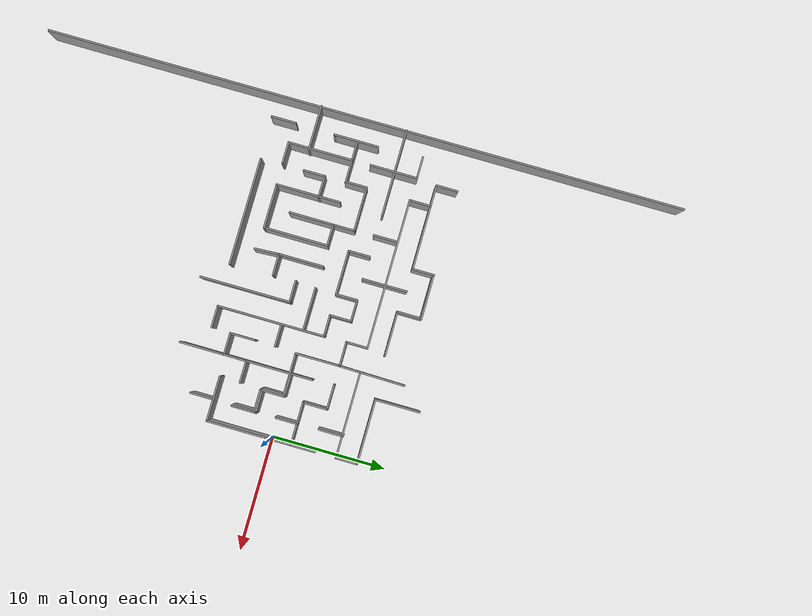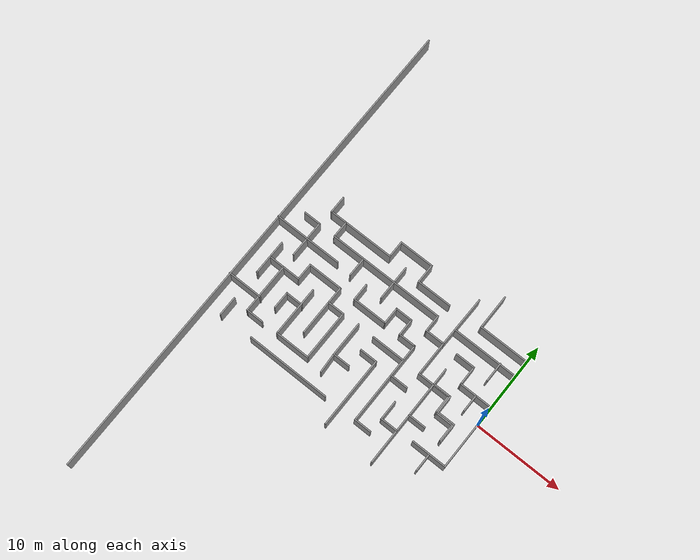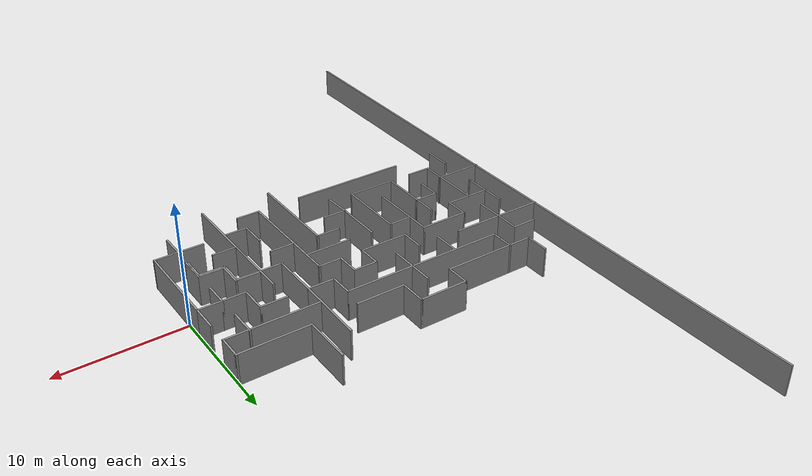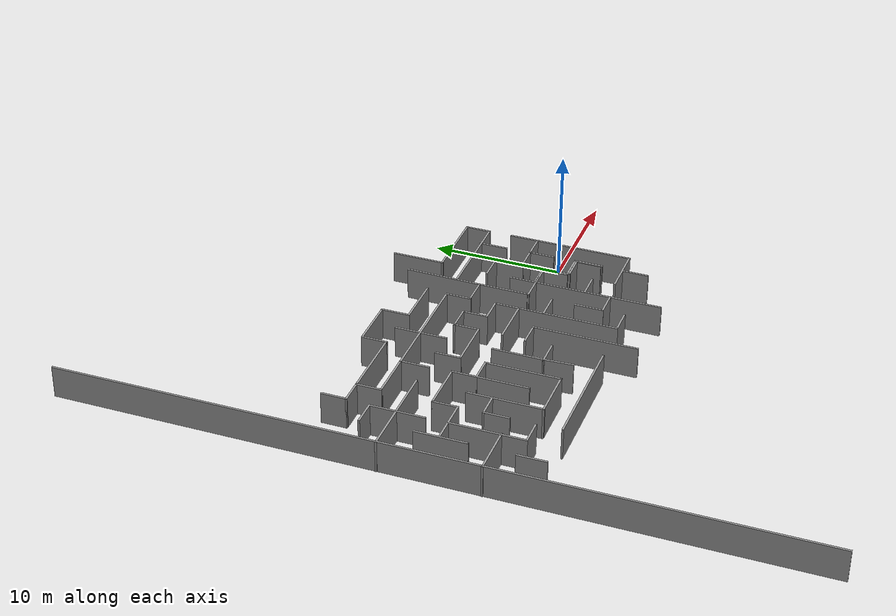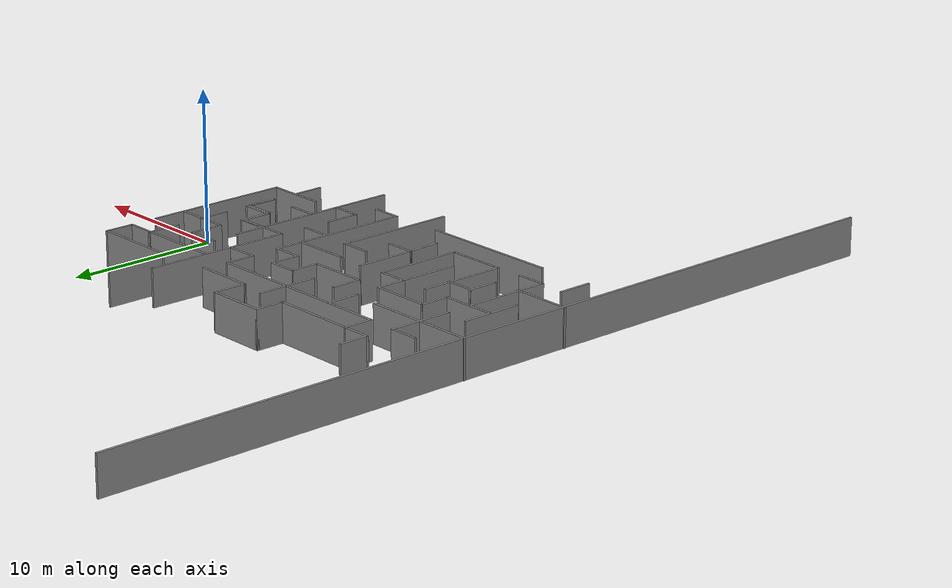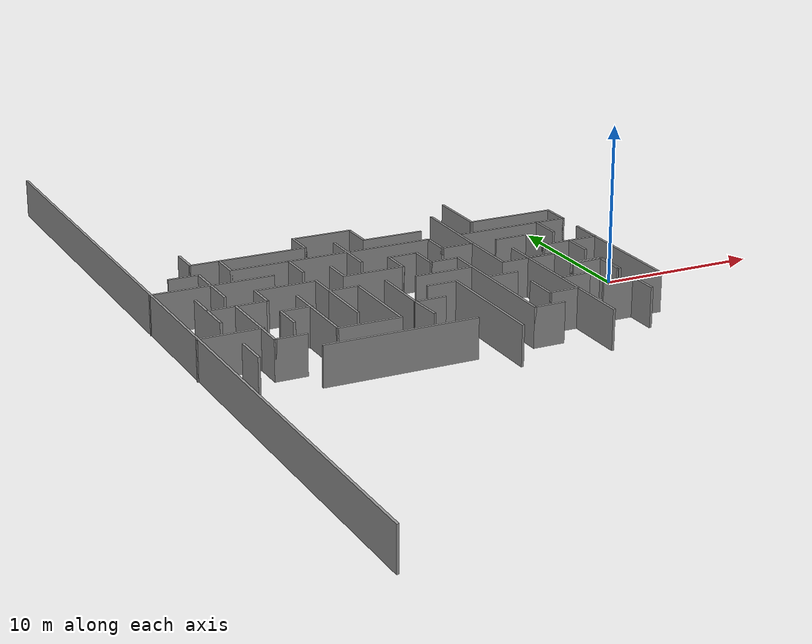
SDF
<sdf version="1.7">
 <model name="maze4">
  <pose>-0.019787 0.082438 0 0 -0 0</pose>
  <link name="Wall_100">
   <collision name="Wall_100_Collision">
    <geometry><box><size>5.75 0.15 2.5</size></box></geometry>
    <pose>0 0 1.25 0 -0 0</pose>
   </collision>
   <visual name="Wall_100_Visual">
    <pose>0 0 1.25 0 -0 0</pose>
    <geometry><box><size>5.75 0.15 2.5</size></box></geometry>
    <material>
     <script><uri>file://media/materials/scripts/gazebo.material</uri><name>Gazebo/Grey</name></script>
     <ambient>1 1 1 1</ambient>
    </material>
    <meta><layer>0</layer></meta>
   </visual>
   <pose>-20.839 -2.82935 0 0 -0 1.5708</pose>
  </link>
  <link name="Wall_102">
   <collision name="Wall_102_Collision">
    <geometry><box><size>4 0.15 2.5</size></box></geometry>
    <pose>0 0 1.25 0 -0 0</pose>
   </collision>
   <visual name="Wall_102_Visual">
    <pose>0 0 1.25 0 -0 0</pose>
    <geometry><box><size>4 0.15 2.5</size></box></geometry>
    <material>
     <script><uri>file://media/materials/scripts/gazebo.material</uri><name>Gazebo/Grey</name></script>
     <ambient>1 1 1 1</ambient>
    </material>
    <meta><layer>0</layer></meta>
   </visual>
   <pose>-18.839 -1.95435 0 0 -0 -1.5708</pose>
  </link>
  <link name="Wall_104">
   <collision name="Wall_104_Collision">
    <geometry><box><size>2 0.15 2.5</size></box></geometry>
    <pose>0 0 1.25 0 -0 0</pose>
   </collision>
   <visual name="Wall_104_Visual">
    <pose>0 0 1.25 0 -0 0</pose>
    <geometry><box><size>2 0.15 2.5</size></box></geometry>
    <material>
     <script><uri>file://media/materials/scripts/gazebo.material</uri><name>Gazebo/Grey</name></script>
     <ambient>1 1 1 1</ambient>
    </material>
    <meta><layer>0</layer></meta>
   </visual>
   <pose>-21.7242 -1.89031 0 0 -0 3.14159</pose>
  </link>
  <link name="Wall_105">
   <collision name="Wall_105_Collision">
    <geometry><box><size>2 0.15 2.5</size></box></geometry>
    <pose>0 0 1.25 0 -0 0</pose>
   </collision>
   <visual name="Wall_105_Visual">
    <pose>0 0 1.25 0 -0 0</pose>
    <geometry><box><size>2 0.15 2.5</size></box></geometry>
    <material>
     <script><uri>file://media/materials/scripts/gazebo.material</uri><name>Gazebo/Grey</name></script>
     <ambient>1 1 1 1</ambient>
    </material>
    <meta><layer>0</layer></meta>
   </visual>
   <pose>-22.6492 -2.81531 0 0 -0 -1.5708</pose>
  </link>
  <link name="Wall_107">
   <collision name="Wall_107_Collision">
    <geometry><box><size>5.75 0.15 2.5</size></box></geometry>
    <pose>0 0 1.25 0 -0 0</pose>
   </collision>
   <visual name="Wall_107_Visual">
    <pose>0 0 1.25 0 -0 0</pose>
    <geometry><box><size>5.75 0.15 2.5</size></box></geometry>
    <material>
     <script><uri>file://media/materials/scripts/gazebo.material</uri><name>Gazebo/Grey</name></script>
     <ambient>1 1 1 1</ambient>
    </material>
    <meta><layer>0</layer></meta>
   </visual>
   <pose>-24.6141 -2.87587 0 0 -0 -1.5708</pose>
  </link>
  <link name="Wall_108">
   <collision name="Wall_108_Collision">
    <geometry><box><size>2 0.15 2.5</size></box></geometry>
    <pose>0 0 1.25 0 -0 0</pose>
   </collision>
   <visual name="Wall_108_Visual">
    <pose>0 0 1.25 0 -0 0</pose>
    <geometry><box><size>2 0.15 2.5</size></box></geometry>
    <material>
     <script><uri>file://media/materials/scripts/gazebo.material</uri><name>Gazebo/Grey</name></script>
     <ambient>1 1 1 1</ambient>
    </material>
    <meta><layer>0</layer></meta>
   </visual>
   <pose>-23.6891 -5.67587 0 0 -0 0</pose>
  </link>
  <link name="Wall_111">
   <collision name="Wall_111_Collision">
    <geometry><box><size>4 0.15 2.5</size></box></geometry>
    <pose>0 0 1.25 0 -0 0</pose>
   </collision>
   <visual name="Wall_111_Visual">
    <pose>0 0 1.25 0 -0 0</pose>
    <geometry><box><size>4 0.15 2.5</size></box></geometry>
    <material>
     <script><uri>file://media/materials/scripts/gazebo.material</uri><name>Gazebo/Grey</name></script>
     <ambient>1 1 1 1</ambient>
    </material>
    <meta><layer>0</layer></meta>
   </visual>
   <pose>-26.4576 -3.84431 0 0 -0 0</pose>
  </link>
  <link name="Wall_113">
   <collision name="Wall_113_Collision">
    <geometry><box><size>2.25 0.15 2.5</size></box></geometry>
    <pose>0 0 1.25 0 -0 0</pose>
   </collision>
   <visual name="Wall_113_Visual">
    <pose>0 0 1.25 0 -0 0</pose>
    <geometry><box><size>2.25 0.15 2.5</size></box></geometry>
    <material>
     <script><uri>file://media/materials/scripts/gazebo.material</uri><name>Gazebo/Grey</name></script>
     <ambient>1 1 1 1</ambient>
    </material>
    <meta><layer>0</layer></meta>
   </visual>
   <pose>-26.382 -6.61569 0 0 -0 -1.5708</pose>
  </link>
  <link name="Wall_201">
   <collision name="Wall_201_Collision">
    <geometry><box><size>8 0.15 2.5</size></box></geometry>
    <pose>0 0 1.25 0 -0 0</pose>
   </collision>
   <visual name="Wall_201_Visual">
    <pose>0 0 1.25 0 -0 0</pose>
    <geometry><box><size>8 0.15 2.5</size></box></geometry>
    <material>
     <script><uri>file://media/materials/scripts/gazebo.material</uri><name>Gazebo/Grey</name></script>
     <ambient>1 1 1 1</ambient>
    </material>
    <meta><layer>0</layer></meta>
   </visual>
   <pose>-11.4856 -5.69111 0 0 -0 1.5708</pose>
  </link>
  <link name="Wall_202">
   <collision name="Wall_202_Collision">
    <geometry><box><size>2 0.15 2.5</size></box></geometry>
    <pose>0 0 1.25 0 -0 0</pose>
   </collision>
   <visual name="Wall_202_Visual">
    <pose>0 0 1.25 0 -0 0</pose>
    <geometry><box><size>2 0.15 2.5</size></box></geometry>
    <material>
     <script><uri>file://media/materials/scripts/gazebo.material</uri><name>Gazebo/Grey</name></script>
     <ambient>1 1 1 1</ambient>
    </material>
    <meta><layer>0</layer></meta>
   </visual>
   <pose>-12.4106 -1.76612 0 0 -0 3.14159</pose>
  </link>
  <link name="Wall_204">
   <collision name="Wall_204_Collision">
    <geometry><box><size>4 0.15 2.5</size></box></geometry>
    <pose>0 0 1.25 0 -0 0</pose>
   </collision>
   <visual name="Wall_204_Visual">
    <pose>0 0 1.25 0 -0 0</pose>
    <geometry><box><size>4 0.15 2.5</size></box></geometry>
    <material>
     <script><uri>file://media/materials/scripts/gazebo.material</uri><name>Gazebo/Grey</name></script>
     <ambient>1 1 1 1</ambient>
    </material>
    <meta><layer>0</layer></meta>
   </visual>
   <pose>-15.1629 -1.84397 0 0 -0 -1.5708</pose>
  </link>
  <link name="Wall_205">
   <collision name="Wall_205_Collision">
    <geometry><box><size>2 0.15 2.5</size></box></geometry>
    <pose>0 0 1.25 0 -0 0</pose>
   </collision>
   <visual name="Wall_205_Visual">
    <pose>0 0 1.25 0 -0 0</pose>
    <geometry><box><size>2 0.15 2.5</size></box></geometry>
    <material>
     <script><uri>file://media/materials/scripts/gazebo.material</uri><name>Gazebo/Grey</name></script>
     <ambient>1 1 1 1</ambient>
    </material>
    <meta><layer>0</layer></meta>
   </visual>
   <pose>-14.2379 -3.76897 0 0 -0 0</pose>
  </link>
  <link name="Wall_208">
   <collision name="Wall_208_Collision">
    <geometry><box><size>2.28423 0.15 2.5</size></box></geometry>
    <pose>0 0 1.25 0 -0 0</pose>
   </collision>
   <visual name="Wall_208_Visual">
    <pose>0 0 1.25 0 -0 0</pose>
    <geometry><box><size>2.28423 0.15 2.5</size></box></geometry>
    <material>
     <script><uri>file://media/materials/scripts/gazebo.material</uri><name>Gazebo/Grey</name></script>
     <ambient>1 1 1 1</ambient>
    </material>
    <meta><layer>0</layer></meta>
   </visual>
   <pose>-15.1019 -4.83434 0 0 -0 1.62802</pose>
  </link>
  <link name="Wall_210">
   <collision name="Wall_210_Collision">
    <geometry><box><size>9.5 0.15 2.5</size></box></geometry>
    <pose>0 0 1.25 0 -0 0</pose>
   </collision>
   <visual name="Wall_210_Visual">
    <pose>0 0 1.25 0 -0 0</pose>
    <geometry><box><size>9.5 0.15 2.5</size></box></geometry>
    <material>
     <script><uri>file://media/materials/scripts/gazebo.material</uri><name>Gazebo/Grey</name></script>
     <ambient>1 1 1 1</ambient>
    </material>
    <meta><layer>0</layer></meta>
   </visual>
   <pose>-17.8927 -7.56781 0 0 -0 0</pose>
  </link>
  <link name="Wall_212">
   <collision name="Wall_212_Collision">
    <geometry><box><size>2 0.15 2.5</size></box></geometry>
    <pose>0 0 1.25 0 -0 0</pose>
   </collision>
   <visual name="Wall_212_Visual">
    <pose>0 0 1.25 0 -0 0</pose>
    <geometry><box><size>2 0.15 2.5</size></box></geometry>
    <material>
     <script><uri>file://media/materials/scripts/gazebo.material</uri><name>Gazebo/Grey</name></script>
     <ambient>1 1 1 1</ambient>
    </material>
    <meta><layer>0</layer></meta>
   </visual>
   <pose>-22.6528 6.57753 0 0 -0 -1.5708</pose>
  </link>
  <link name="Wall_213">
   <collision name="Wall_213_Collision">
    <geometry><box><size>13.25 0.15 2.5</size></box></geometry>
    <pose>0 0 1.25 0 -0 0</pose>
   </collision>
   <visual name="Wall_213_Visual">
    <pose>0 0 1.25 0 -0 0</pose>
    <geometry><box><size>13.25 0.15 2.5</size></box></geometry>
    <material>
     <script><uri>file://media/materials/scripts/gazebo.material</uri><name>Gazebo/Grey</name></script>
     <ambient>1 1 1 1</ambient>
    </material>
    <meta><layer>0</layer></meta>
   </visual>
   <pose>-16.1028 5.65253 0 0 -0 0</pose>
  </link>
  <link name="Wall_214">
   <collision name="Wall_214_Collision">
    <geometry><box><size>2 0.15 2.5</size></box></geometry>
    <pose>0 0 1.25 0 -0 0</pose>
   </collision>
   <visual name="Wall_214_Visual">
    <pose>0 0 1.25 0 -0 0</pose>
    <geometry><box><size>2 0.15 2.5</size></box></geometry>
    <material>
     <script><uri>file://media/materials/scripts/gazebo.material</uri><name>Gazebo/Grey</name></script>
     <ambient>1 1 1 1</ambient>
    </material>
    <meta><layer>0</layer></meta>
   </visual>
   <pose>-9.5528 4.72753 0 0 -0 -1.5708</pose>
  </link>
  <link name="Wall_215">
   <collision name="Wall_215_Collision">
    <geometry><box><size>2.25 0.15 2.5</size></box></geometry>
    <pose>0 0 1.25 0 -0 0</pose>
   </collision>
   <visual name="Wall_215_Visual">
    <pose>0 0 1.25 0 -0 0</pose>
    <geometry><box><size>2.25 0.15 2.5</size></box></geometry>
    <material>
     <script><uri>file://media/materials/scripts/gazebo.material</uri><name>Gazebo/Grey</name></script>
     <ambient>1 1 1 1</ambient>
    </material>
    <meta><layer>0</layer></meta>
   </visual>
   <pose>-8.5028 3.80253 0 0 -0 0</pose>
  </link>
  <link name="Wall_216">
   <collision name="Wall_216_Collision">
    <geometry><box><size>4 0.15 2.5</size></box></geometry>
    <pose>0 0 1.25 0 -0 0</pose>
   </collision>
   <visual name="Wall_216_Visual">
    <pose>0 0 1.25 0 -0 0</pose>
    <geometry><box><size>4 0.15 2.5</size></box></geometry>
    <material>
     <script><uri>file://media/materials/scripts/gazebo.material</uri><name>Gazebo/Grey</name></script>
     <ambient>1 1 1 1</ambient>
    </material>
    <meta><layer>0</layer></meta>
   </visual>
   <pose>-7.4528 1.87753 0 0 -0 -1.5708</pose>
  </link>
  <link name="Wall_217">
   <collision name="Wall_217_Collision">
    <geometry><box><size>3.75 0.15 2.5</size></box></geometry>
    <pose>0 0 1.25 0 -0 0</pose>
   </collision>
   <visual name="Wall_217_Visual">
    <pose>0 0 1.25 0 -0 0</pose>
    <geometry><box><size>3.75 0.15 2.5</size></box></geometry>
    <material>
     <script><uri>file://media/materials/scripts/gazebo.material</uri><name>Gazebo/Grey</name></script>
     <ambient>1 1 1 1</ambient>
    </material>
    <meta><layer>0</layer></meta>
   </visual>
   <pose>-5.6528 -0.04747 0 0 -0 0</pose>
  </link>
  <link name="Wall_218">
   <collision name="Wall_218_Collision">
    <geometry><box><size>2 0.15 2.5</size></box></geometry>
    <pose>0 0 1.25 0 -0 0</pose>
   </collision>
   <visual name="Wall_218_Visual">
    <pose>0 0 1.25 0 -0 0</pose>
    <geometry><box><size>2 0.15 2.5</size></box></geometry>
    <material>
     <script><uri>file://media/materials/scripts/gazebo.material</uri><name>Gazebo/Grey</name></script>
     <ambient>1 1 1 1</ambient>
    </material>
    <meta><layer>0</layer></meta>
   </visual>
   <pose>-3.8528 -0.97247 0 0 -0 -1.5708</pose>
  </link>
  <link name="Wall_219">
   <collision name="Wall_219_Collision">
    <geometry><box><size>2.25 0.15 2.5</size></box></geometry>
    <pose>0 0 1.25 0 -0 0</pose>
   </collision>
   <visual name="Wall_219_Visual">
    <pose>0 0 1.25 0 -0 0</pose>
    <geometry><box><size>2.25 0.15 2.5</size></box></geometry>
    <material>
     <script><uri>file://media/materials/scripts/gazebo.material</uri><name>Gazebo/Grey</name></script>
     <ambient>1 1 1 1</ambient>
    </material>
    <meta><layer>0</layer></meta>
   </visual>
   <pose>-2.8028 -1.89747 0 0 -0 0</pose>
  </link>
  <link name="Wall_220">
   <collision name="Wall_220_Collision">
    <geometry><box><size>2.25 0.15 2.5</size></box></geometry>
    <pose>0 0 1.25 0 -0 0</pose>
   </collision>
   <visual name="Wall_220_Visual">
    <pose>0 0 1.25 0 -0 0</pose>
    <geometry><box><size>2.25 0.15 2.5</size></box></geometry>
    <material>
     <script><uri>file://media/materials/scripts/gazebo.material</uri><name>Gazebo/Grey</name></script>
     <ambient>1 1 1 1</ambient>
    </material>
    <meta><layer>0</layer></meta>
   </visual>
   <pose>-1.7528 -2.94747 0 0 -0 -1.5708</pose>
  </link>
  <link name="Wall_222">
   <collision name="Wall_222_Collision">
    <geometry><box><size>2.25 0.15 2.5</size></box></geometry>
    <pose>0 0 1.25 0 -0 0</pose>
   </collision>
   <visual name="Wall_222_Visual">
    <pose>0 0 1.25 0 -0 0</pose>
    <geometry><box><size>2.25 0.15 2.5</size></box></geometry>
    <material>
     <script><uri>file://media/materials/scripts/gazebo.material</uri><name>Gazebo/Grey</name></script>
     <ambient>1 1 1 1</ambient>
    </material>
    <meta><layer>0</layer></meta>
   </visual>
   <pose>-18.9274 4.58745 0 0 -0 -1.5708</pose>
  </link>
  <link name="Wall_224">
   <collision name="Wall_224_Collision">
    <geometry><box><size>4 0.15 2.5</size></box></geometry>
    <pose>0 0 1.25 0 -0 0</pose>
   </collision>
   <visual name="Wall_224_Visual">
    <pose>0 0 1.25 0 -0 0</pose>
    <geometry><box><size>4 0.15 2.5</size></box></geometry>
    <material>
     <script><uri>file://media/materials/scripts/gazebo.material</uri><name>Gazebo/Grey</name></script>
     <ambient>1 1 1 1</ambient>
    </material>
    <meta><layer>0</layer></meta>
   </visual>
   <pose>-15.0711 5.58752 0 0 -0 -1.5708</pose>
  </link>
  <link name="Wall_226">
   <collision name="Wall_226_Collision">
    <geometry><box><size>5.75 0.15 2.5</size></box></geometry>
    <pose>0 0 1.25 0 -0 0</pose>
   </collision>
   <visual name="Wall_226_Visual">
    <pose>0 0 1.25 0 -0 0</pose>
    <geometry><box><size>5.75 0.15 2.5</size></box></geometry>
    <material>
     <script><uri>file://media/materials/scripts/gazebo.material</uri><name>Gazebo/Grey</name></script>
     <ambient>1 1 1 1</ambient>
    </material>
    <meta><layer>0</layer></meta>
   </visual>
   <pose>-19.8528 7.50253 0 0 -0 0</pose>
  </link>
  <link name="Wall_227">
   <collision name="Wall_227_Collision">
    <geometry><box><size>2 0.15 2.5</size></box></geometry>
    <pose>0 0 1.25 0 -0 0</pose>
   </collision>
   <visual name="Wall_227_Visual">
    <pose>0 0 1.25 0 -0 0</pose>
    <geometry><box><size>2 0.15 2.5</size></box></geometry>
    <material>
     <script><uri>file://media/materials/scripts/gazebo.material</uri><name>Gazebo/Grey</name></script>
     <ambient>1 1 1 1</ambient>
    </material>
    <meta><layer>0</layer></meta>
   </visual>
   <pose>-17.0528 8.42753 0 0 -0 1.5708</pose>
  </link>
  <link name="Wall_228">
   <collision name="Wall_228_Collision">
    <geometry><box><size>4 0.15 2.5</size></box></geometry>
    <pose>0 0 1.25 0 -0 0</pose>
   </collision>
   <visual name="Wall_228_Visual">
    <pose>0 0 1.25 0 -0 0</pose>
    <geometry><box><size>4 0.15 2.5</size></box></geometry>
    <material>
     <script><uri>file://media/materials/scripts/gazebo.material</uri><name>Gazebo/Grey</name></script>
     <ambient>1 1 1 1</ambient>
    </material>
    <meta><layer>0</layer></meta>
   </visual>
   <pose>-15.1278 9.35253 0 0 -0 0</pose>
  </link>
  <link name="Wall_232">
   <collision name="Wall_232_Collision">
    <geometry><box><size>2.25 0.15 2.5</size></box></geometry>
    <pose>0 0 1.25 0 -0 0</pose>
   </collision>
   <visual name="Wall_232_Visual">
    <pose>0 0 1.25 0 -0 0</pose>
    <geometry><box><size>2.25 0.15 2.5</size></box></geometry>
    <material>
     <script><uri>file://media/materials/scripts/gazebo.material</uri><name>Gazebo/Grey</name></script>
     <ambient>1 1 1 1</ambient>
    </material>
    <meta><layer>0</layer></meta>
   </visual>
   <pose>-13.2028 8.30253 0 0 -0 -1.5708</pose>
  </link>
  <link name="Wall_233">
   <collision name="Wall_233_Collision">
    <geometry><box><size>4 0.15 2.5</size></box></geometry>
    <pose>0 0 1.25 0 -0 0</pose>
   </collision>
   <visual name="Wall_233_Visual">
    <pose>0 0 1.25 0 -0 0</pose>
    <geometry><box><size>4 0.15 2.5</size></box></geometry>
    <material>
     <script><uri>file://media/materials/scripts/gazebo.material</uri><name>Gazebo/Grey</name></script>
     <ambient>1 1 1 1</ambient>
    </material>
    <meta><layer>0</layer></meta>
   </visual>
   <pose>-11.2778 7.25253 0 0 -0 0</pose>
  </link>
  <link name="Wall_236">
   <collision name="Wall_236_Collision">
    <geometry><box><size>5.8419 0.15 2.5</size></box></geometry>
    <pose>0 0 1.25 0 -0 0</pose>
   </collision>
   <visual name="Wall_236_Visual">
    <pose>0 0 1.25 0 -0 0</pose>
    <geometry><box><size>5.8419 0.15 2.5</size></box></geometry>
    <material>
     <script><uri>file://media/materials/scripts/gazebo.material</uri><name>Gazebo/Grey</name></script>
     <ambient>1 1 1 1</ambient>
    </material>
    <meta><layer>0</layer></meta>
   </visual>
   <pose>-7.40767 6.64812 0 0 -0 -1.58666</pose>
  </link>
  <link name="Wall_238">
   <collision name="Wall_238_Collision">
    <geometry><box><size>7.5 0.15 2.5</size></box></geometry>
    <pose>0 0 1.25 0 -0 0</pose>
   </collision>
   <visual name="Wall_238_Visual">
    <pose>0 0 1.25 0 -0 0</pose>
    <geometry><box><size>7.5 0.15 2.5</size></box></geometry>
    <material>
     <script><uri>file://media/materials/scripts/gazebo.material</uri><name>Gazebo/Grey</name></script>
     <ambient>1 1 1 1</ambient>
    </material>
    <meta><layer>0</layer></meta>
   </visual>
   <pose>-3.64825 5.63745 0 0 -0 0</pose>
  </link>
  <link name="Wall_239">
   <collision name="Wall_239_Collision">
    <geometry><box><size>2 0.15 2.5</size></box></geometry>
    <pose>0 0 1.25 0 -0 0</pose>
   </collision>
   <visual name="Wall_239_Visual">
    <pose>0 0 1.25 0 -0 0</pose>
    <geometry><box><size>2 0.15 2.5</size></box></geometry>
    <material>
     <script><uri>file://media/materials/scripts/gazebo.material</uri><name>Gazebo/Grey</name></script>
     <ambient>1 1 1 1</ambient>
    </material>
    <meta><layer>0</layer></meta>
   </visual>
   <pose>0.026754 6.56245 0 0 -0 1.5708</pose>
  </link>
  <link name="Wall_240">
   <collision name="Wall_240_Collision">
    <geometry><box><size>5.75 0.15 2.5</size></box></geometry>
    <pose>0 0 1.25 0 -0 0</pose>
   </collision>
   <visual name="Wall_240_Visual">
    <pose>0 0 1.25 0 -0 0</pose>
    <geometry><box><size>5.75 0.15 2.5</size></box></geometry>
    <material>
     <script><uri>file://media/materials/scripts/gazebo.material</uri><name>Gazebo/Grey</name></script>
     <ambient>1 1 1 1</ambient>
    </material>
    <meta><layer>0</layer></meta>
   </visual>
   <pose>-2.77325 7.48745 0 0 -0 3.14159</pose>
  </link>
  <link name="Wall_241">
   <collision name="Wall_241_Collision">
    <geometry><box><size>4 0.15 2.5</size></box></geometry>
    <pose>0 0 1.25 0 -0 0</pose>
   </collision>
   <visual name="Wall_241_Visual">
    <pose>0 0 1.25 0 -0 0</pose>
    <geometry><box><size>4 0.15 2.5</size></box></geometry>
    <material>
     <script><uri>file://media/materials/scripts/gazebo.material</uri><name>Gazebo/Grey</name></script>
     <ambient>1 1 1 1</ambient>
    </material>
    <meta><layer>0</layer></meta>
   </visual>
   <pose>-5.57325 9.41245 0 0 -0 1.5708</pose>
  </link>
  <link name="Wall_247">
   <collision name="Wall_247_Collision">
    <geometry><box><size>2 0.15 2.5</size></box></geometry>
    <pose>0 0 1.25 0 -0 0</pose>
   </collision>
   <visual name="Wall_247_Visual">
    <pose>0 0 1.25 0 -0 0</pose>
    <geometry><box><size>2 0.15 2.5</size></box></geometry>
    <material>
     <script><uri>file://media/materials/scripts/gazebo.material</uri><name>Gazebo/Grey</name></script>
     <ambient>1 1 1 1</ambient>
    </material>
    <meta><layer>0</layer></meta>
   </visual>
   <pose>-17.0523 2.76663 0 0 -0 -1.5708</pose>
  </link>
  <link name="Wall_248">
   <collision name="Wall_248_Collision">
    <geometry><box><size>4 0.15 2.5</size></box></geometry>
    <pose>0 0 1.25 0 -0 0</pose>
   </collision>
   <visual name="Wall_248_Visual">
    <pose>0 0 1.25 0 -0 0</pose>
    <geometry><box><size>4 0.15 2.5</size></box></geometry>
    <material>
     <script><uri>file://media/materials/scripts/gazebo.material</uri><name>Gazebo/Grey</name></script>
     <ambient>1 1 1 1</ambient>
    </material>
    <meta><layer>0</layer></meta>
   </visual>
   <pose>-15.1273 1.84163 0 0 -0 0</pose>
  </link>
  <link name="Wall_249">
   <collision name="Wall_249_Collision">
    <geometry><box><size>2 0.15 2.5</size></box></geometry>
    <pose>0 0 1.25 0 -0 0</pose>
   </collision>
   <visual name="Wall_249_Visual">
    <pose>0 0 1.25 0 -0 0</pose>
    <geometry><box><size>2 0.15 2.5</size></box></geometry>
    <material>
     <script><uri>file://media/materials/scripts/gazebo.material</uri><name>Gazebo/Grey</name></script>
     <ambient>1 1 1 1</ambient>
    </material>
    <meta><layer>0</layer></meta>
   </visual>
   <pose>-13.2023 2.76663 0 0 -0 1.5708</pose>
  </link>
  <link name="Wall_250">
   <collision name="Wall_250_Collision">
    <geometry><box><size>2 0.15 2.5</size></box></geometry>
    <pose>0 0 1.25 0 -0 0</pose>
   </collision>
   <visual name="Wall_250_Visual">
    <pose>0 0 1.25 0 -0 0</pose>
    <geometry><box><size>2 0.15 2.5</size></box></geometry>
    <material>
     <script><uri>file://media/materials/scripts/gazebo.material</uri><name>Gazebo/Grey</name></script>
     <ambient>1 1 1 1</ambient>
    </material>
    <meta><layer>0</layer></meta>
   </visual>
   <pose>-12.2773 3.69164 0 0 -0 0</pose>
  </link>
  <link name="Wall_251">
   <collision name="Wall_251_Collision">
    <geometry><box><size>2 0.15 2.5</size></box></geometry>
    <pose>0 0 1.25 0 -0 0</pose>
   </collision>
   <visual name="Wall_251_Visual">
    <pose>0 0 1.25 0 -0 0</pose>
    <geometry><box><size>2 0.15 2.5</size></box></geometry>
    <material>
     <script><uri>file://media/materials/scripts/gazebo.material</uri><name>Gazebo/Grey</name></script>
     <ambient>1 1 1 1</ambient>
    </material>
    <meta><layer>0</layer></meta>
   </visual>
   <pose>-11.3523 2.76663 0 0 -0 -1.5708</pose>
  </link>
  <link name="Wall_252">
   <collision name="Wall_252_Collision">
    <geometry><box><size>2 0.15 2.5</size></box></geometry>
    <pose>0 0 1.25 0 -0 0</pose>
   </collision>
   <visual name="Wall_252_Visual">
    <pose>0 0 1.25 0 -0 0</pose>
    <geometry><box><size>2 0.15 2.5</size></box></geometry>
    <material>
     <script><uri>file://media/materials/scripts/gazebo.material</uri><name>Gazebo/Grey</name></script>
     <ambient>1 1 1 1</ambient>
    </material>
    <meta><layer>0</layer></meta>
   </visual>
   <pose>-10.4273 1.84163 0 0 -0 0</pose>
  </link>
  <link name="Wall_253">
   <collision name="Wall_253_Collision">
    <geometry><box><size>9.5 0.15 2.5</size></box></geometry>
    <pose>0 0 1.25 0 -0 0</pose>
   </collision>
   <visual name="Wall_253_Visual">
    <pose>0 0 1.25 0 -0 0</pose>
    <geometry><box><size>9.5 0.15 2.5</size></box></geometry>
    <material>
     <script><uri>file://media/materials/scripts/gazebo.material</uri><name>Gazebo/Grey</name></script>
     <ambient>1 1 1 1</ambient>
    </material>
    <meta><layer>0</layer></meta>
   </visual>
   <pose>-9.50234 -2.83337 0 0 -0 -1.5708</pose>
  </link>
  <link name="Wall_254">
   <collision name="Wall_254_Collision">
    <geometry><box><size>2 0.15 2.5</size></box></geometry>
    <pose>0 0 1.25 0 -0 0</pose>
   </collision>
   <visual name="Wall_254_Visual">
    <pose>0 0 1.25 0 -0 0</pose>
    <geometry><box><size>2 0.15 2.5</size></box></geometry>
    <material>
     <script><uri>file://media/materials/scripts/gazebo.material</uri><name>Gazebo/Grey</name></script>
     <ambient>1 1 1 1</ambient>
    </material>
    <meta><layer>0</layer></meta>
   </visual>
   <pose>-8.57734 -7.50837 0 0 -0 0</pose>
  </link>
  <link name="Wall_260">
   <collision name="Wall_260_Collision">
    <geometry><box><size>3.75 0.15 2.5</size></box></geometry>
    <pose>0 0 1.25 0 -0 0</pose>
   </collision>
   <visual name="Wall_260_Visual">
    <pose>0 0 1.25 0 -0 0</pose>
    <geometry><box><size>3.75 0.15 2.5</size></box></geometry>
    <material>
     <script><uri>file://media/materials/scripts/gazebo.material</uri><name>Gazebo/Grey</name></script>
     <ambient>1 1 1 1</ambient>
    </material>
    <meta><layer>0</layer></meta>
   </visual>
   <pose>-11.3961 0.012268 0 0 -0 0</pose>
  </link>
  <link name="Wall_262">
   <collision name="Wall_262_Collision">
    <geometry><box><size>11.75 0.15 2.5</size></box></geometry>
    <pose>0 0 1.25 0 -0 0</pose>
   </collision>
   <visual name="Wall_262_Visual">
    <pose>0 0 1.25 0 -0 0</pose>
    <geometry><box><size>11.75 0.15 2.5</size></box></geometry>
    <material>
     <script><uri>file://media/materials/scripts/gazebo.material</uri><name>Gazebo/Grey</name></script>
     <ambient>1 1 1 1</ambient>
    </material>
    <meta><layer>0</layer></meta>
   </visual>
   <pose>-5.69583 -3.91267 0 0 -0 -1.5708</pose>
  </link>
  <link name="Wall_264">
   <collision name="Wall_264_Collision">
    <geometry><box><size>2 0.15 2.5</size></box></geometry>
    <pose>0 0 1.25 0 -0 0</pose>
   </collision>
   <visual name="Wall_264_Visual">
    <pose>0 0 1.25 0 -0 0</pose>
    <geometry><box><size>2 0.15 2.5</size></box></geometry>
    <material>
     <script><uri>file://media/materials/scripts/gazebo.material</uri><name>Gazebo/Grey</name></script>
     <ambient>1 1 1 1</ambient>
    </material>
    <meta><layer>0</layer></meta>
   </visual>
   <pose>-8.48558 -1.89817 0 0 -0 0</pose>
  </link>
  <link name="Wall_266">
   <collision name="Wall_266_Collision">
    <geometry><box><size>2.25 0.15 2.5</size></box></geometry>
    <pose>0 0 1.25 0 -0 0</pose>
   </collision>
   <visual name="Wall_266_Visual">
    <pose>0 0 1.25 0 -0 0</pose>
    <geometry><box><size>2.25 0.15 2.5</size></box></geometry>
    <material>
     <script><uri>file://media/materials/scripts/gazebo.material</uri><name>Gazebo/Grey</name></script>
     <ambient>1 1 1 1</ambient>
    </material>
    <meta><layer>0</layer></meta>
   </visual>
   <pose>-7.5709 -4.78786 0 0 -0 -1.5708</pose>
  </link>
  <link name="Wall_267">
   <collision name="Wall_267_Collision">
    <geometry><box><size>2 0.15 2.5</size></box></geometry>
    <pose>0 0 1.25 0 -0 0</pose>
   </collision>
   <visual name="Wall_267_Visual">
    <pose>0 0 1.25 0 -0 0</pose>
    <geometry><box><size>2 0.15 2.5</size></box></geometry>
    <material>
     <script><uri>file://media/materials/scripts/gazebo.material</uri><name>Gazebo/Grey</name></script>
     <ambient>1 1 1 1</ambient>
    </material>
    <meta><layer>0</layer></meta>
   </visual>
   <pose>-6.6459 -5.83786 0 0 -0 0</pose>
  </link>
  <link name="Wall_269">
   <collision name="Wall_269_Collision">
    <geometry><box><size>2 0.15 2.5</size></box></geometry>
    <pose>0 0 1.25 0 -0 0</pose>
   </collision>
   <visual name="Wall_269_Visual">
    <pose>0 0 1.25 0 -0 0</pose>
    <geometry><box><size>2 0.15 2.5</size></box></geometry>
    <material>
     <script><uri>file://media/materials/scripts/gazebo.material</uri><name>Gazebo/Grey</name></script>
     <ambient>1 1 1 1</ambient>
    </material>
    <meta><layer>0</layer></meta>
   </visual>
   <pose>-4.62932 0.047646 0 0 -0 0</pose>
  </link>
  <link name="Wall_270">
   <collision name="Wall_270_Collision">
    <geometry><box><size>2.25 0.15 2.5</size></box></geometry>
    <pose>0 0 1.25 0 -0 0</pose>
   </collision>
   <visual name="Wall_270_Visual">
    <pose>0 0 1.25 0 -0 0</pose>
    <geometry><box><size>2.25 0.15 2.5</size></box></geometry>
    <material>
     <script><uri>file://media/materials/scripts/gazebo.material</uri><name>Gazebo/Grey</name></script>
     <ambient>1 1 1 1</ambient>
    </material>
    <meta><layer>0</layer></meta>
   </visual>
   <pose>-3.70432 -1.00235 0 0 -0 -1.5708</pose>
  </link>
  <link name="Wall_271">
   <collision name="Wall_271_Collision">
    <geometry><box><size>2 0.15 2.5</size></box></geometry>
    <pose>0 0 1.25 0 -0 0</pose>
   </collision>
   <visual name="Wall_271_Visual">
    <pose>0 0 1.25 0 -0 0</pose>
    <geometry><box><size>2 0.15 2.5</size></box></geometry>
    <material>
     <script><uri>file://media/materials/scripts/gazebo.material</uri><name>Gazebo/Grey</name></script>
     <ambient>1 1 1 1</ambient>
    </material>
    <meta><layer>0</layer></meta>
   </visual>
   <pose>-2.77932 -2.05235 0 0 -0 0</pose>
  </link>
  <link name="Wall_272">
   <collision name="Wall_272_Collision">
    <geometry><box><size>2 0.15 2.5</size></box></geometry>
    <pose>0 0 1.25 0 -0 0</pose>
   </collision>
   <visual name="Wall_272_Visual">
    <pose>0 0 1.25 0 -0 0</pose>
    <geometry><box><size>2 0.15 2.5</size></box></geometry>
    <material>
     <script><uri>file://media/materials/scripts/gazebo.material</uri><name>Gazebo/Grey</name></script>
     <ambient>1 1 1 1</ambient>
    </material>
    <meta><layer>0</layer></meta>
   </visual>
   <pose>-1.85432 -2.97735 0 0 -0 -1.5708</pose>
  </link>
  <link name="Wall_274">
   <collision name="Wall_274_Collision">
    <geometry><box><size>2 0.15 2.5</size></box></geometry>
    <pose>0 0 1.25 0 -0 0</pose>
   </collision>
   <visual name="Wall_274_Visual">
    <pose>0 0 1.25 0 -0 0</pose>
    <geometry><box><size>2 0.15 2.5</size></box></geometry>
    <material>
     <script><uri>file://media/materials/scripts/gazebo.material</uri><name>Gazebo/Grey</name></script>
     <ambient>1 1 1 1</ambient>
    </material>
    <meta><layer>0</layer></meta>
   </visual>
   <pose>-4.73546 -3.87937 0 0 -0 0</pose>
  </link>
  <link name="Wall_276">
   <collision name="Wall_276_Collision">
    <geometry><box><size>2.25 0.15 2.5</size></box></geometry>
    <pose>0 0 1.25 0 -0 0</pose>
   </collision>
   <visual name="Wall_276_Visual">
    <pose>0 0 1.25 0 -0 0</pose>
    <geometry><box><size>2.25 0.15 2.5</size></box></geometry>
    <material>
     <script><uri>file://media/materials/scripts/gazebo.material</uri><name>Gazebo/Grey</name></script>
     <ambient>1 1 1 1</ambient>
    </material>
    <meta><layer>0</layer></meta>
   </visual>
   <pose>-4.71659 3.79777 0 0 -0 0</pose>
  </link>
  <link name="Wall_277">
   <collision name="Wall_277_Collision">
    <geometry><box><size>2.25 0.15 2.5</size></box></geometry>
    <pose>0 0 1.25 0 -0 0</pose>
   </collision>
   <visual name="Wall_277_Visual">
    <pose>0 0 1.25 0 -0 0</pose>
    <geometry><box><size>2.25 0.15 2.5</size></box></geometry>
    <material>
     <script><uri>file://media/materials/scripts/gazebo.material</uri><name>Gazebo/Grey</name></script>
     <ambient>1 1 1 1</ambient>
    </material>
    <meta><layer>0</layer></meta>
   </visual>
   <pose>-3.66659 2.74777 0 0 -0 -1.5708</pose>
  </link>
  <link name="Wall_278">
   <collision name="Wall_278_Collision">
    <geometry><box><size>2 0.15 2.5</size></box></geometry>
    <pose>0 0 1.25 0 -0 0</pose>
   </collision>
   <visual name="Wall_278_Visual">
    <pose>0 0 1.25 0 -0 0</pose>
    <geometry><box><size>2 0.15 2.5</size></box></geometry>
    <material>
     <script><uri>file://media/materials/scripts/gazebo.material</uri><name>Gazebo/Grey</name></script>
     <ambient>1 1 1 1</ambient>
    </material>
    <meta><layer>0</layer></meta>
   </visual>
   <pose>-2.74159 1.69777 0 0 -0 0</pose>
  </link>
  <link name="Wall_279">
   <collision name="Wall_279_Collision">
    <geometry><box><size>2 0.15 2.5</size></box></geometry>
    <pose>0 0 1.25 0 -0 0</pose>
   </collision>
   <visual name="Wall_279_Visual">
    <pose>0 0 1.25 0 -0 0</pose>
    <geometry><box><size>2 0.15 2.5</size></box></geometry>
    <material>
     <script><uri>file://media/materials/scripts/gazebo.material</uri><name>Gazebo/Grey</name></script>
     <ambient>1 1 1 1</ambient>
    </material>
    <meta><layer>0</layer></meta>
   </visual>
   <pose>-1.81659 0.77277 0 0 -0 -1.5708</pose>
  </link>
  <link name="Wall_281">
   <collision name="Wall_281_Collision">
    <geometry><box><size>2 0.15 2.5</size></box></geometry>
    <pose>0 0 1.25 0 -0 0</pose>
   </collision>
   <visual name="Wall_281_Visual">
    <pose>0 0 1.25 0 -0 0</pose>
    <geometry><box><size>2 0.15 2.5</size></box></geometry>
    <material>
     <script><uri>file://media/materials/scripts/gazebo.material</uri><name>Gazebo/Grey</name></script>
     <ambient>1 1 1 1</ambient>
    </material>
    <meta><layer>0</layer></meta>
   </visual>
   <pose>-0.891591 1.69777 0 0 -0 0</pose>
  </link>
  <link name="Wall_282">
   <collision name="Wall_282_Collision">
    <geometry><box><size>2.25 0.15 2.5</size></box></geometry>
    <pose>0 0 1.25 0 -0 0</pose>
   </collision>
   <visual name="Wall_282_Visual">
    <pose>0 0 1.25 0 -0 0</pose>
    <geometry><box><size>2.25 0.15 2.5</size></box></geometry>
    <material>
     <script><uri>file://media/materials/scripts/gazebo.material</uri><name>Gazebo/Grey</name></script>
     <ambient>1 1 1 1</ambient>
    </material>
    <meta><layer>0</layer></meta>
   </visual>
   <pose>0.033409 2.74777 0 0 -0 1.5708</pose>
  </link>
  <link name="Wall_284">
   <collision name="Wall_284_Collision">
    <geometry><box><size>7.5 0.15 2.5</size></box></geometry>
    <pose>0 0 1.25 0 -0 0</pose>
   </collision>
   <visual name="Wall_284_Visual">
    <pose>0 0 1.25 0 -0 0</pose>
    <geometry><box><size>7.5 0.15 2.5</size></box></geometry>
    <material>
     <script><uri>file://media/materials/scripts/gazebo.material</uri><name>Gazebo/Grey</name></script>
     <ambient>1 1 1 1</ambient>
    </material>
    <meta><layer>0</layer></meta>
   </visual>
   <pose>0.033409 -1.97723 0 0 -0 -1.5708</pose>
  </link>
  <link name="Wall_285">
   <collision name="Wall_285_Collision">
    <geometry><box><size>4 0.15 2.5</size></box></geometry>
    <pose>0 0 1.25 0 -0 0</pose>
   </collision>
   <visual name="Wall_285_Visual">
    <pose>0 0 1.25 0 -0 0</pose>
    <geometry><box><size>4 0.15 2.5</size></box></geometry>
    <material>
     <script><uri>file://media/materials/scripts/gazebo.material</uri><name>Gazebo/Grey</name></script>
     <ambient>1 1 1 1</ambient>
    </material>
    <meta><layer>0</layer></meta>
   </visual>
   <pose>-1.89159 -5.65223 0 0 -0 3.14159</pose>
  </link>
  <link name="Wall_289">
   <collision name="Wall_289_Collision">
    <geometry><box><size>2.25 0.15 2.5</size></box></geometry>
    <pose>0 0 1.25 0 -0 0</pose>
   </collision>
   <visual name="Wall_289_Visual">
    <pose>0 0 1.25 0 -0 0</pose>
    <geometry><box><size>2.25 0.15 2.5</size></box></geometry>
    <material>
     <script><uri>file://media/materials/scripts/gazebo.material</uri><name>Gazebo/Grey</name></script>
     <ambient>1 1 1 1</ambient>
    </material>
    <meta><layer>0</layer></meta>
   </visual>
   <pose>-1.87495 4.65821 0 0 -0 -1.5708</pose>
  </link>
  <link name="Wall_292">
   <collision name="Wall_292_Collision">
    <geometry><box><size>2 0.15 2.5</size></box></geometry>
    <pose>0 0 1.25 0 -0 0</pose>
   </collision>
   <visual name="Wall_292_Visual">
    <pose>0 0 1.25 0 -0 0</pose>
    <geometry><box><size>2 0.15 2.5</size></box></geometry>
    <material>
     <script><uri>file://media/materials/scripts/gazebo.material</uri><name>Gazebo/Grey</name></script>
     <ambient>1 1 1 1</ambient>
    </material>
    <meta><layer>0</layer></meta>
   </visual>
   <pose>-1.84583 -6.70449 0 0 -0 1.5708</pose>
  </link>
  <link name="Wall_3">
   <collision name="Wall_3_Collision">
    <geometry><box><size>56.75 0.15 2.5</size></box></geometry>
    <pose>0 0 1.25 0 -0 0</pose>
   </collision>
   <visual name="Wall_3_Visual">
    <pose>0 0 1.25 0 -0 0</pose>
    <geometry><box><size>56.75 0.15 2.5</size></box></geometry>
    <material>
     <script><uri>file://media/materials/scripts/gazebo.material</uri><name>Gazebo/Grey</name></script>
     <ambient>1 1 1 1</ambient>
    </material>
    <meta><layer>0</layer></meta>
   </visual>
   <pose>-28.3217 0.019671 0 0 -0 1.5708</pose>
  </link>
  <link name="Wall_81">
   <collision name="Wall_81_Collision">
    <geometry><box><size>2 0.15 2.5</size></box></geometry>
    <pose>0 0 1.25 0 -0 0</pose>
   </collision>
   <visual name="Wall_81_Visual">
    <pose>0 0 1.25 0 -0 0</pose>
    <geometry><box><size>2 0.15 2.5</size></box></geometry>
    <material>
     <script><uri>file://media/materials/scripts/gazebo.material</uri><name>Gazebo/Grey</name></script>
     <ambient>1 1 1 1</ambient>
    </material>
    <meta><layer>0</layer></meta>
   </visual>
   <pose>-23.5778 7.50253 0 0 -0 3.14159</pose>
  </link>
  <link name="Wall_82">
   <collision name="Wall_82_Collision">
    <geometry><box><size>2 0.15 2.5</size></box></geometry>
    <pose>0 0 1.25 0 -0 0</pose>
   </collision>
   <visual name="Wall_82_Visual">
    <pose>0 0 1.25 0 -0 0</pose>
    <geometry><box><size>2 0.15 2.5</size></box></geometry>
    <material>
     <script><uri>file://media/materials/scripts/gazebo.material</uri><name>Gazebo/Grey</name></script>
     <ambient>1 1 1 1</ambient>
    </material>
    <meta><layer>0</layer></meta>
   </visual>
   <pose>-24.5028 8.42753 0 0 -0 1.5708</pose>
  </link>
  <link name="Wall_84">
   <collision name="Wall_84_Collision">
    <geometry><box><size>2 0.15 2.5</size></box></geometry>
    <pose>0 0 1.25 0 -0 0</pose>
   </collision>
   <visual name="Wall_84_Visual">
    <pose>0 0 1.25 0 -0 0</pose>
    <geometry><box><size>2 0.15 2.5</size></box></geometry>
    <material>
     <script><uri>file://media/materials/scripts/gazebo.material</uri><name>Gazebo/Grey</name></script>
     <ambient>1 1 1 1</ambient>
    </material>
    <meta><layer>0</layer></meta>
   </visual>
   <pose>-25.5711 5.72921 0 0 -0 0</pose>
  </link>
  <link name="Wall_85">
   <collision name="Wall_85_Collision">
    <geometry><box><size>4.25 0.15 2.5</size></box></geometry>
    <pose>0 0 1.25 0 -0 0</pose>
   </collision>
   <visual name="Wall_85_Visual">
    <pose>0 0 1.25 0 -0 0</pose>
    <geometry><box><size>4.25 0.15 2.5</size></box></geometry>
    <material>
     <script><uri>file://media/materials/scripts/gazebo.material</uri><name>Gazebo/Grey</name></script>
     <ambient>1 1 1 1</ambient>
    </material>
    <meta><layer>0</layer></meta>
   </visual>
   <pose>-24.6461 3.6792 0 0 -0 -1.5708</pose>
  </link>
  <link name="Wall_87">
   <collision name="Wall_87_Collision">
    <geometry><box><size>7.75 0.15 2.5</size></box></geometry>
    <pose>0 0 1.25 0 -0 0</pose>
   </collision>
   <visual name="Wall_87_Visual">
    <pose>0 0 1.25 0 -0 0</pose>
    <geometry><box><size>7.75 0.15 2.5</size></box></geometry>
    <material>
     <script><uri>file://media/materials/scripts/gazebo.material</uri><name>Gazebo/Grey</name></script>
     <ambient>1 1 1 1</ambient>
    </material>
    <meta><layer>0</layer></meta>
   </visual>
   <pose>-24.557 3.74688 0 0 -0 0</pose>
  </link>
  <link name="Wall_90">
   <collision name="Wall_90_Collision">
    <geometry><box><size>4 0.15 2.5</size></box></geometry>
    <pose>0 0 1.25 0 -0 0</pose>
   </collision>
   <visual name="Wall_90_Visual">
    <pose>0 0 1.25 0 -0 0</pose>
    <geometry><box><size>4 0.15 2.5</size></box></geometry>
    <material>
     <script><uri>file://media/materials/scripts/gazebo.material</uri><name>Gazebo/Grey</name></script>
     <ambient>1 1 1 1</ambient>
    </material>
    <meta><layer>0</layer></meta>
   </visual>
   <pose>-26.3355 -0.139917 0 0 -0 -1.5708</pose>
  </link>
  <link name="Wall_91">
   <collision name="Wall_91_Collision">
    <geometry><box><size>0.16 0.15 2.5</size></box></geometry>
    <pose>0 0 1.25 0 -0 0</pose>
   </collision>
   <visual name="Wall_91_Visual">
    <pose>0 0 1.25 0 -0 0</pose>
    <geometry><box><size>0.16 0.15 2.5</size></box></geometry>
    <material>
     <script><uri>file://media/materials/scripts/gazebo.material</uri><name>Gazebo/Grey</name></script>
     <ambient>1 1 1 1</ambient>
    </material>
    <meta><layer>0</layer></meta>
   </visual>
   <pose>-26.3305 -2.06492 0 0 -0 0</pose>
  </link>
  <link name="Wall_93">
   <collision name="Wall_93_Collision">
    <geometry><box><size>3.75 0.15 2.5</size></box></geometry>
    <pose>0 0 1.25 0 -0 0</pose>
   </collision>
   <visual name="Wall_93_Visual">
    <pose>0 0 1.25 0 -0 0</pose>
    <geometry><box><size>3.75 0.15 2.5</size></box></geometry>
    <material>
     <script><uri>file://media/materials/scripts/gazebo.material</uri><name>Gazebo/Grey</name></script>
     <ambient>1 1 1 1</ambient>
    </material>
    <meta><layer>0</layer></meta>
   </visual>
   <pose>-24.489 -0.029349 0 0 -0 0</pose>
  </link>
  <link name="Wall_94">
   <collision name="Wall_94_Collision">
    <geometry><box><size>2 0.15 2.5</size></box></geometry>
    <pose>0 0 1.25 0 -0 0</pose>
   </collision>
   <visual name="Wall_94_Visual">
    <pose>0 0 1.25 0 -0 0</pose>
    <geometry><box><size>2 0.15 2.5</size></box></geometry>
    <material>
     <script><uri>file://media/materials/scripts/gazebo.material</uri><name>Gazebo/Grey</name></script>
     <ambient>1 1 1 1</ambient>
    </material>
    <meta><layer>0</layer></meta>
   </visual>
   <pose>-22.689 0.895651 0 0 -0 1.5708</pose>
  </link>
  <link name="Wall_95">
   <collision name="Wall_95_Collision">
    <geometry><box><size>4 0.15 2.5</size></box></geometry>
    <pose>0 0 1.25 0 -0 0</pose>
   </collision>
   <visual name="Wall_95_Visual">
    <pose>0 0 1.25 0 -0 0</pose>
    <geometry><box><size>4 0.15 2.5</size></box></geometry>
    <material>
     <script><uri>file://media/materials/scripts/gazebo.material</uri><name>Gazebo/Grey</name></script>
     <ambient>1 1 1 1</ambient>
    </material>
    <meta><layer>0</layer></meta>
   </visual>
   <pose>-20.764 1.82065 0 0 -0 0</pose>
  </link>
  <link name="Wall_96">
   <collision name="Wall_96_Collision">
    <geometry><box><size>2 0.15 2.5</size></box></geometry>
    <pose>0 0 1.25 0 -0 0</pose>
   </collision>
   <visual name="Wall_96_Visual">
    <pose>0 0 1.25 0 -0 0</pose>
    <geometry><box><size>2 0.15 2.5</size></box></geometry>
    <material>
     <script><uri>file://media/materials/scripts/gazebo.material</uri><name>Gazebo/Grey</name></script>
     <ambient>1 1 1 1</ambient>
    </material>
    <meta><layer>0</layer></meta>
   </visual>
   <pose>-18.839 0.895651 0 0 -0 -1.5708</pose>
  </link>
  <link name="Wall_97">
   <collision name="Wall_97_Collision">
    <geometry><box><size>2 0.15 2.5</size></box></geometry>
    <pose>0 0 1.25 0 -0 0</pose>
   </collision>
   <visual name="Wall_97_Visual">
    <pose>0 0 1.25 0 -0 0</pose>
    <geometry><box><size>2 0.15 2.5</size></box></geometry>
    <material>
     <script><uri>file://media/materials/scripts/gazebo.material</uri><name>Gazebo/Grey</name></script>
     <ambient>1 1 1 1</ambient>
    </material>
    <meta><layer>0</layer></meta>
   </visual>
   <pose>-17.914 -0.029349 0 0 -0 0</pose>
  </link>
  <link name="Wall_98">
   <collision name="Wall_98_Collision">
    <geometry><box><size>5.75 0.15 2.5</size></box></geometry>
    <pose>0 0 1.25 0 -0 0</pose>
   </collision>
   <visual name="Wall_98_Visual">
    <pose>0 0 1.25 0 -0 0</pose>
    <geometry><box><size>5.75 0.15 2.5</size></box></geometry>
    <material>
     <script><uri>file://media/materials/scripts/gazebo.material</uri><name>Gazebo/Grey</name></script>
     <ambient>1 1 1 1</ambient>
    </material>
    <meta><layer>0</layer></meta>
   </visual>
   <pose>-16.989 -2.82935 0 0 -0 -1.5708</pose>
  </link>
  <link name="Wall_99">
   <collision name="Wall_99_Collision">
    <geometry><box><size>4 0.15 2.5</size></box></geometry>
    <pose>0 0 1.25 0 -0 0</pose>
   </collision>
   <visual name="Wall_99_Visual">
    <pose>0 0 1.25 0 -0 0</pose>
    <geometry><box><size>4 0.15 2.5</size></box></geometry>
    <material>
     <script><uri>file://media/materials/scripts/gazebo.material</uri><name>Gazebo/Grey</name></script>
     <ambient>1 1 1 1</ambient>
    </material>
    <meta><layer>0</layer></meta>
   </visual>
   <pose>-18.914 -5.62935 0 0 -0 3.14159</pose>
  </link>
  <static>1</static>
 </model>
</sdf>
